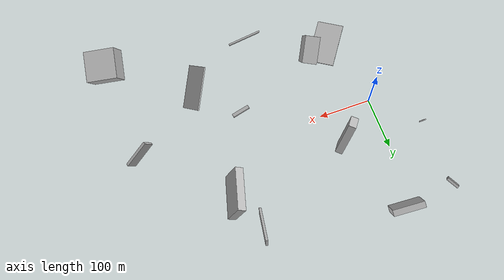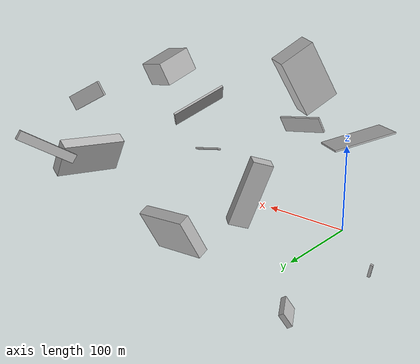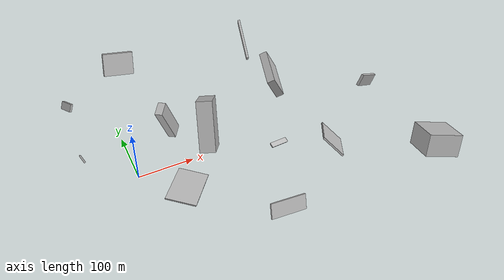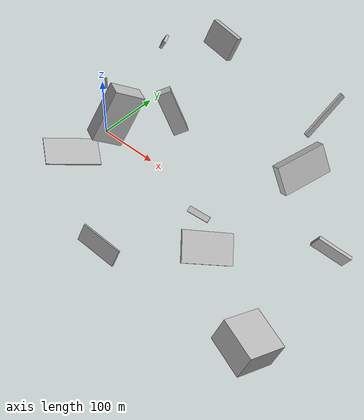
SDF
<sdf version="1.6">
 <world name="default">
  <scene>
   <sky><clouds><speed>12</speed></clouds></sky>
   <ambient>0.4 0.4 0.4 1</ambient>
   <background>0.7 0.7 0.7 1</background>
   <shadows>1</shadows>
  </scene>
  <gravity>0 0 -9.8066</gravity>
  <magnetic_field>6e-06 2.3e-05 -4.2e-05</magnetic_field>
  <physics default="0" name="default_physics" type="ode">
   <ode>
    <solver>
     <type>quick</type>
     <iters>10</iters>
     <sor>1.0</sor>
     <use_dynamic_moi_rescaling>0</use_dynamic_moi_rescaling>
    </solver>
    <constraints>
     <cfm>0</cfm>
     <erp>0.2</erp>
     <contact_max_correcting_vel>100</contact_max_correcting_vel>
     <contact_surface_layer>0.001</contact_surface_layer>
    </constraints>
   </ode>
   <max_step_size>0.004</max_step_size>
   <real_time_factor>1</real_time_factor>
   <real_time_update_rate>250</real_time_update_rate>
  </physics>
  <light name="sun" type="directional">
   <pose>0 0 10 0 0 0</pose>
   <diffuse>0.8 0.8 0.8 1</diffuse>
   <specular>0.2 0.2 0.2 1</specular>
   <attenuation>
    <range>1000</range>
    <constant>0.9</constant>
    <linear>0.01</linear>
    <quadratic>0.001</quadratic>
   </attenuation>
   <direction>-0.5 0.1 -0.9</direction>
  </light>
  <model name="building_1">
   <static>0</static>
   <pose>440.9567457287222 -10.517867565151564 74.2578406714167 1.7502900298930262 -1.03707262840457 0.22611990671117543</pose>
   <link name="link">
    <gravity>0</gravity>
    <pose>0 0 2.5 0 0 0</pose>
    <collision name="collision"><geometry><box><size>22 52 5</size></box></geometry></collision>
    <visual name="visual">
     <cast_shadows>0</cast_shadows>
     <geometry><box><size>22 52 5</size></box></geometry>
     <material>
      <script>
       <uri>model://HANNAS_wall/materials/scripts</uri>
       <uri>model://HANNAS_wall/materials/textures</uri>
       <name>vrc/HANNAS_wall</name>
      </script>
     </material>
    </visual>
   </link>
  </model>
  <model name="building_2">
   <static>0</static>
   <pose>31.855238375607417 -97.68633663721748 71.76782597077188 -2.0641767737642134 1.3279544941671786 -2.6911885979972214</pose>
   <link name="link">
    <gravity>0</gravity>
    <pose>0 0 24.5 0 0 0</pose>
    <collision name="collision"><geometry><box><size>2 80 49</size></box></geometry></collision>
    <visual name="visual">
     <cast_shadows>0</cast_shadows>
     <geometry><box><size>2 80 49</size></box></geometry>
     <material>
      <script>
       <uri>model://HANNAS_wall/materials/scripts</uri>
       <uri>model://HANNAS_wall/materials/textures</uri>
       <name>vrc/HANNAS_wall</name>
      </script>
     </material>
    </visual>
   </link>
  </model>
  <model name="building_3">
   <static>0</static>
   <pose>282.41356125557104 185.72807872695194 79.7500055998443 0.07659245397720413 0.5812070408258161 -1.7396203143101676</pose>
   <link name="link">
    <gravity>0</gravity>
    <pose>0 0 5.5 0 0 0</pose>
    <collision name="collision"><geometry><box><size>80 4 11</size></box></geometry></collision>
    <visual name="visual">
     <cast_shadows>0</cast_shadows>
     <geometry><box><size>80 4 11</size></box></geometry>
     <material>
      <script>
       <uri>model://HANNAS_wall/materials/scripts</uri>
       <uri>model://HANNAS_wall/materials/textures</uri>
       <name>vrc/HANNAS_wall</name>
      </script>
     </material>
    </visual>
   </link>
  </model>
  <model name="building_4">
   <static>0</static>
   <pose>452.31233122013055 -204.72242263399238 63.51973185403466 0.3552916295267613 -0.1893613059064753 2.8717996752046187</pose>
   <link name="link">
    <gravity>0</gravity>
    <pose>0 0 19.0 0 0 0</pose>
    <collision name="collision"><geometry><box><size>58 56 38</size></box></geometry></collision>
    <visual name="visual">
     <cast_shadows>0</cast_shadows>
     <geometry><box><size>58 56 38</size></box></geometry>
     <material>
      <script>
       <uri>model://HANNAS_wall/materials/scripts</uri>
       <uri>model://HANNAS_wall/materials/textures</uri>
       <name>vrc/HANNAS_wall</name>
      </script>
     </material>
    </visual>
   </link>
  </model>
  <model name="building_5">
   <static>0</static>
   <pose>156.91547630075206 -193.81395583130993 43.90041140031201 -1.9098295127805551 1.0905896458270175 -1.8212387191374235</pose>
   <link name="link">
    <gravity>0</gravity>
    <pose>0 0 32.0 0 0 0</pose>
    <collision name="collision"><geometry><box><size>26 3 64</size></box></geometry></collision>
    <visual name="visual">
     <cast_shadows>0</cast_shadows>
     <geometry><box><size>26 3 64</size></box></geometry>
     <material>
      <script>
       <uri>model://HANNAS_wall/materials/scripts</uri>
       <uri>model://HANNAS_wall/materials/textures</uri>
       <name>vrc/HANNAS_wall</name>
      </script>
     </material>
    </visual>
   </link>
  </model>
  <model name="building_6">
   <static>0</static>
   <pose>86.6301698739333 76.75006226963015 49.701407238270065 1.8952636467980182 -0.12782006362120749 -0.6908005038241478</pose>
   <link name="link">
    <gravity>0</gravity>
    <pose>0 0 12.0 0 0 0</pose>
    <collision name="collision"><geometry><box><size>14 80 24</size></box></geometry></collision>
    <visual name="visual">
     <cast_shadows>0</cast_shadows>
     <geometry><box><size>14 80 24</size></box></geometry>
     <material>
      <script>
       <uri>model://HANNAS_wall/materials/scripts</uri>
       <uri>model://HANNAS_wall/materials/textures</uri>
       <name>vrc/HANNAS_wall</name>
      </script>
     </material>
    </visual>
   </link>
  </model>
  <model name="building_7">
   <static>0</static>
   <pose>324.8147223799817 -124.07241473204198 49.068117922326174 0.8609880316612959 -0.4410012738051773 -2.0830578311232864</pose>
   <link name="link">
    <gravity>0</gravity>
    <pose>0 0 22.0 0 0 0</pose>
    <collision name="collision"><geometry><box><size>80 3 44</size></box></geometry></collision>
    <visual name="visual">
     <cast_shadows>0</cast_shadows>
     <geometry><box><size>80 3 44</size></box></geometry>
     <material>
      <script>
       <uri>model://HANNAS_wall/materials/scripts</uri>
       <uri>model://HANNAS_wall/materials/textures</uri>
       <name>vrc/HANNAS_wall</name>
      </script>
     </material>
    </visual>
   </link>
  </model>
  <model name="building_8">
   <static>0</static>
   <pose>243.2146179866686 -46.62893749976909 29.69441061074689 2.7759321133196204 -1.1381992281532334 -1.047298517798781</pose>
   <link name="link">
    <gravity>0</gravity>
    <pose>0 0 4.5 0 0 0</pose>
    <collision name="collision"><geometry><box><size>2 34 9</size></box></geometry></collision>
    <visual name="visual">
     <cast_shadows>0</cast_shadows>
     <geometry><box><size>2 34 9</size></box></geometry>
     <material>
      <script>
       <uri>model://HANNAS_wall/materials/scripts</uri>
       <uri>model://HANNAS_wall/materials/textures</uri>
       <name>vrc/HANNAS_wall</name>
      </script>
     </material>
    </visual>
   </link>
  </model>
  <model name="building_9">
   <static>0</static>
   <pose>94.53212277074857 -65.5281990888027 145.0845947780136 -1.4049839181810455 1.032510139322848 -1.8767587472407754</pose>
   <link name="link">
    <gravity>0</gravity>
    <pose>0 0 12.5 0 0 0</pose>
    <collision name="collision"><geometry><box><size>80 46 25</size></box></geometry></collision>
    <visual name="visual">
     <cast_shadows>0</cast_shadows>
     <geometry><box><size>80 46 25</size></box></geometry>
     <material>
      <script>
       <uri>model://HANNAS_wall/materials/scripts</uri>
       <uri>model://HANNAS_wall/materials/textures</uri>
       <name>vrc/HANNAS_wall</name>
      </script>
     </material>
    </visual>
   </link>
  </model>
  <model name="building_10">
   <static>0</static>
   <pose>36.78594749594454 221.23098092000896 52.136656120248695 0.14820875849865645 0.4433947285922724 1.5470868683039378</pose>
   <link name="link">
    <gravity>0</gravity>
    <pose>0 0 21.0 0 0 0</pose>
    <collision name="collision"><geometry><box><size>11 56 42</size></box></geometry></collision>
    <visual name="visual">
     <cast_shadows>0</cast_shadows>
     <geometry><box><size>11 56 42</size></box></geometry>
     <material>
      <script>
       <uri>model://HANNAS_wall/materials/scripts</uri>
       <uri>model://HANNAS_wall/materials/textures</uri>
       <name>vrc/HANNAS_wall</name>
      </script>
     </material>
    </visual>
   </link>
  </model>
  <model name="building_11">
   <static>0</static>
   <pose>-80.78048997747726 77.94356744918623 16.443284097429874 2.817131466091845 -0.2581079473291997 0.19525373990016665</pose>
   <link name="link">
    <gravity>0</gravity>
    <pose>0 0 9.0 0 0 0</pose>
    <collision name="collision"><geometry><box><size>3 2 18</size></box></geometry></collision>
    <visual name="visual">
     <cast_shadows>0</cast_shadows>
     <geometry><box><size>3 2 18</size></box></geometry>
     <material>
      <script>
       <uri>model://HANNAS_wall/materials/scripts</uri>
       <uri>model://HANNAS_wall/materials/textures</uri>
       <name>vrc/HANNAS_wall</name>
      </script>
     </material>
    </visual>
   </link>
  </model>
  <model name="building_12">
   <static>0</static>
   <pose>311.6861456166572 101.28998071181093 50.98863348682386 2.938993328645529 -1.1179230341510753 3.065549628912211</pose>
   <link name="link">
    <gravity>0</gravity>
    <pose>0 0 7.5 0 0 0</pose>
    <collision name="collision"><geometry><box><size>46 80 15</size></box></geometry></collision>
    <visual name="visual">
     <cast_shadows>0</cast_shadows>
     <geometry><box><size>46 80 15</size></box></geometry>
     <material>
      <script>
       <uri>model://HANNAS_wall/materials/scripts</uri>
       <uri>model://HANNAS_wall/materials/textures</uri>
       <name>vrc/HANNAS_wall</name>
      </script>
     </material>
    </visual>
   </link>
  </model>
  <model name="building_13">
   <static>0</static>
   <pose>-74.08702426433139 207.46741138665985 22.6882169971949 2.884895187685647 -1.0107724181199662 0.7565852104817917</pose>
   <link name="link">
    <gravity>0</gravity>
    <pose>0 0 2.5 0 0 0</pose>
    <collision name="collision"><geometry><box><size>15 24 5</size></box></geometry></collision>
    <visual name="visual">
     <cast_shadows>0</cast_shadows>
     <geometry><box><size>15 24 5</size></box></geometry>
     <material>
      <script>
       <uri>model://HANNAS_wall/materials/scripts</uri>
       <uri>model://HANNAS_wall/materials/textures</uri>
       <name>vrc/HANNAS_wall</name>
      </script>
     </material>
    </visual>
   </link>
  </model>
 </world>
</sdf>
